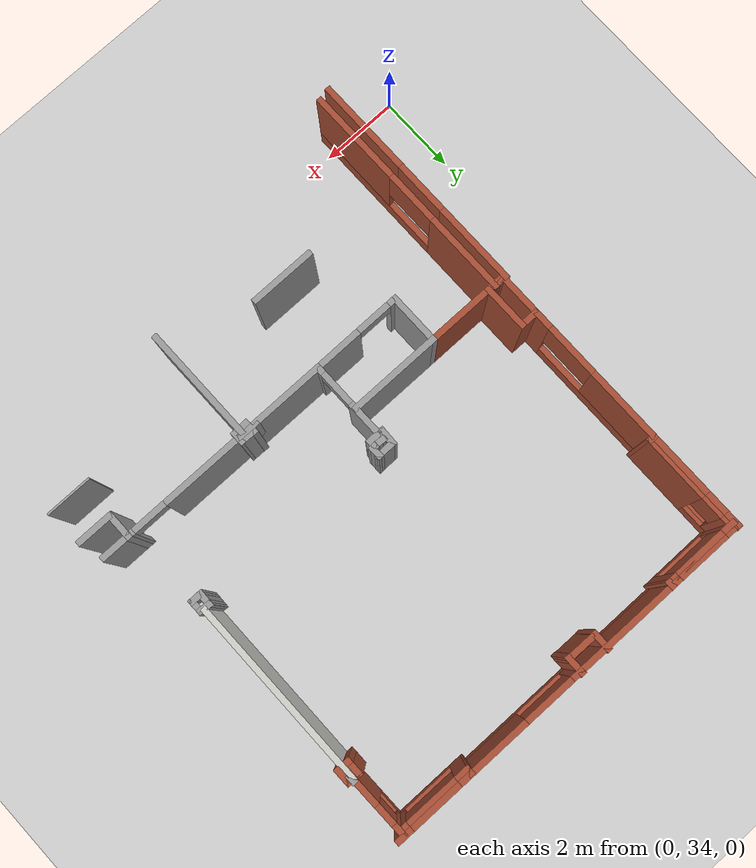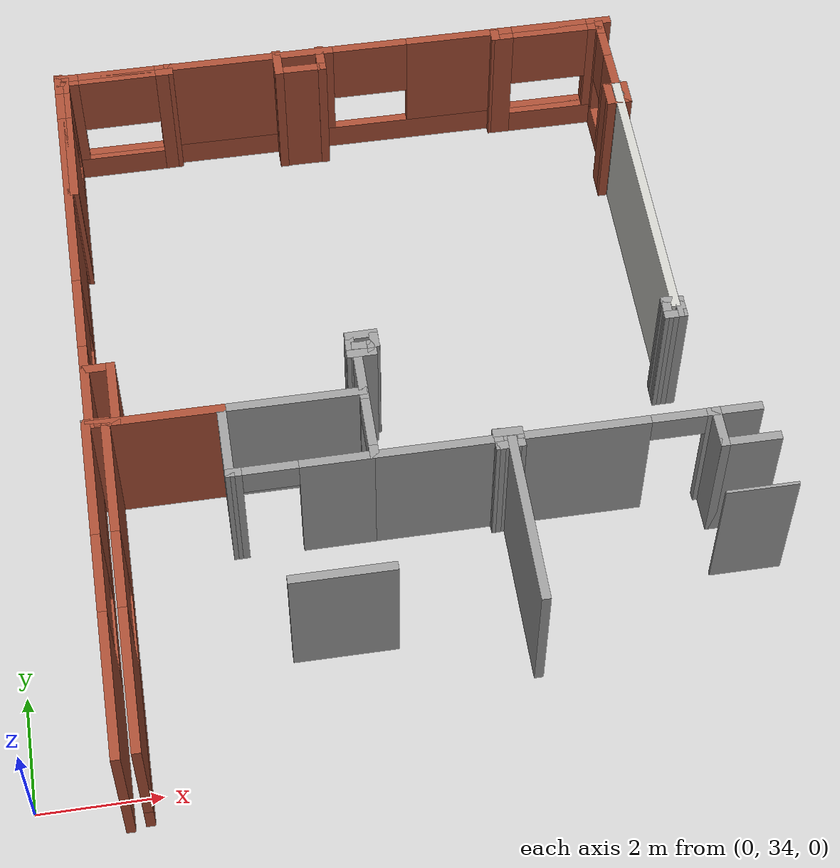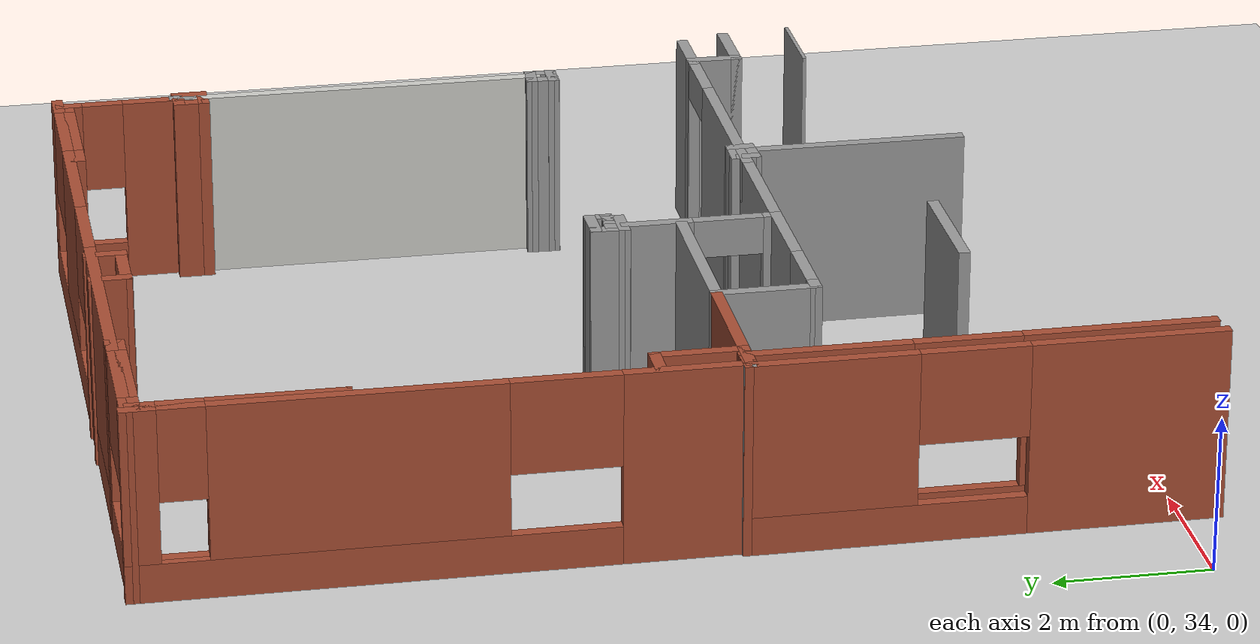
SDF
<sdf version="1.6">
 <world name="default">
  <model name="ground_plane">
   <static>1</static>
   <link name="link">
    <collision name="collision">
     <geometry><plane><normal>0 0 1</normal><size>100 100</size></plane></geometry>
     <surface><friction><ode><mu>100</mu><mu2>50</mu2></ode></friction></surface>
    </collision>
    <visual name="visual">
     <cast_shadows>0</cast_shadows>
     <geometry><plane><normal>0 0 1</normal><size>100 100</size></plane></geometry>
     <material>
      <script><uri>file://media/materials/scripts/gazebo.material</uri><name>Gazebo/Grey</name></script>
     </material>
    </visual>
   </link>
  </model>
  <model name="CVSSP">
   <pose>23.8714 24.094 0 0 -0 0</pose>
   <link name="Wall_302">
    <collision name="Wall_302_Collision">
     <geometry><box><size>0.356824 0.15 2.5</size></box></geometry>
     <pose>0 0 1.25 0 -0 0</pose>
    </collision>
    <visual name="Wall_302_Visual">
     <pose>0 0 1.25 0 -0 0</pose>
     <geometry><box><size>0.356824 0.15 2.5</size></box></geometry>
     <material>
      <script><uri>file://media/materials/scripts/gazebo.material</uri><name>Gazebo/Grey</name></script>
      <ambient>1 1 1 1</ambient>
     </material>
    </visual>
    <pose>-12.6319 21.0442 0 0 0 -1.55451</pose>
   </link>
   <link name="Wall_309">
    <collision name="Wall_309_Collision">
     <geometry><box><size>4.97737 0.15 2.5</size></box></geometry>
     <pose>0 0 1.25 0 -0 0</pose>
    </collision>
    <visual name="Wall_309_Visual">
     <pose>0 0 1.25 0 -0 0</pose>
     <geometry><box><size>4.97737 0.15 2.5</size></box></geometry>
     <material>
      <script><uri>file://media/materials/scripts/gazebo.material</uri><name>Gazebo/CeilingTiled</name></script>
      <ambient>0.588235 0.588235 0.588235 1</ambient>
     </material>
    </visual>
    <pose>-12.6619 18.6826 0 0 -0 1.56838</pose>
   </link>
   <link name="Wall_353">
    <pose>-19.1292 14.0509 0 0 0 -3.13801</pose>
    <visual name="Wall_353_Visual_0">
     <pose>-0.582227 0 1.25 0 -0 0</pose>
     <geometry><box><size>1.27864 0.15 2.5</size></box></geometry>
     <material>
      <script><uri>file://media/materials/scripts/gazebo.material</uri><name>Gazebo/Grey</name></script>
      <ambient>1 1 1 1</ambient>
     </material>
    </visual>
    <collision name="Wall_353_Collision_0">
     <geometry><box><size>1.27864 0.15 2.5</size></box></geometry>
     <pose>-0.582227 0 1.25 0 -0 0</pose>
    </collision>
    <visual name="Wall_353_Visual_1">
     <pose>1.08932 0 1.25 0 -0 0</pose>
     <geometry><box><size>0.264455 0.15 2.5</size></box></geometry>
     <material>
      <script><uri>file://media/materials/scripts/gazebo.material</uri><name>Gazebo/Grey</name></script>
      <ambient>1 1 1 1</ambient>
     </material>
    </visual>
    <collision name="Wall_353_Collision_1">
     <geometry><box><size>0.264455 0.15 2.5</size></box></geometry>
     <pose>1.08932 0 1.25 0 -0 0</pose>
    </collision>
    <visual name="Wall_353_Visual_2">
     <pose>0.507091 0 2.25 0 -0 0</pose>
     <geometry><box><size>0.9 0.15 0.5</size></box></geometry>
     <material>
      <script><uri>file://media/materials/scripts/gazebo.material</uri><name>Gazebo/Grey</name></script>
      <ambient>1 1 1 1</ambient>
     </material>
    </visual>
    <collision name="Wall_353_Collision_2">
     <geometry><box><size>0.9 0.15 0.5</size></box></geometry>
     <pose>0.507091 0 2.25 0 -0 0</pose>
    </collision>
   </link>
   <link name="Wall_354">
    <collision name="Wall_354_Collision">
     <geometry><box><size>1.39179 0.15 2.5</size></box></geometry>
     <pose>0 0 1.25 0 -0 0</pose>
    </collision>
    <visual name="Wall_354_Visual">
     <pose>0 0 1.25 0 -0 0</pose>
     <geometry><box><size>1.39179 0.15 2.5</size></box></geometry>
     <material>
      <script><uri>file://media/materials/scripts/gazebo.material</uri><name>Gazebo/Grey</name></script>
      <ambient>0.588235 0.588235 0.588235 1</ambient>
     </material>
    </visual>
    <pose>-20.2758 14.6677 0 0 -0 1.5708</pose>
   </link>
   <link name="Wall_355">
    <collision name="Wall_355_Collision">
     <geometry><box><size>2.42378 0.15 2.5</size></box></geometry>
     <pose>0 0 1.25 0 -0 0</pose>
    </collision>
    <visual name="Wall_355_Visual">
     <pose>0 0 1.25 0 -0 0</pose>
     <geometry><box><size>2.42378 0.15 2.5</size></box></geometry>
     <material>
      <script><uri>file://media/materials/scripts/gazebo.material</uri><name>Gazebo/Grey</name></script>
      <ambient>0.588235 0.588235 0.588235 1</ambient>
     </material>
    </visual>
    <pose>-19.1389 15.2885 0 0 -0 0</pose>
   </link>
   <link name="Wall_357">
    <collision name="Wall_357_Collision">
     <geometry><box><size>2.25 0.15 2.5</size></box></geometry>
     <pose>0 0 1.25 0 -0 0</pose>
    </collision>
    <visual name="Wall_357_Visual">
     <pose>0 0 1.25 0 -0 0</pose>
     <geometry><box><size>2.25 0.15 2.5</size></box></geometry>
     <material>
      <script><uri>file://media/materials/scripts/gazebo.material</uri><name>Gazebo/Bricks</name></script>
      <ambient>1 1 1 1</ambient>
     </material>
    </visual>
    <pose>-21.3258 15.2885 0 0 -0 3.14159</pose>
   </link>
   <link name="Wall_358">
    <pose>-22.3758 19.0214 0 0 -0 1.5708</pose>
    <visual name="Wall_358_Visual_0">
     <pose>-2.99416 0 1.25 0 -0 0</pose>
     <geometry><box><size>1.62732 0.15 2.5</size></box></geometry>
     <material>
      <script><uri>file://media/materials/scripts/gazebo.material</uri><name>Gazebo/Bricks</name></script>
      <ambient>1 1 1 1</ambient>
     </material>
    </visual>
    <collision name="Wall_358_Collision_0">
     <geometry><box><size>1.62732 0.15 2.5</size></box></geometry>
     <pose>-2.99416 0 1.25 0 -0 0</pose>
    </collision>
    <visual name="Wall_358_Visual_1">
     <pose>0.813662 0 0.25 0 -0 0</pose>
     <geometry><box><size>5.98833 0.15 0.5</size></box></geometry>
     <material>
      <script><uri>file://media/materials/scripts/gazebo.material</uri><name>Gazebo/Bricks</name></script>
      <ambient>1 1 1 1</ambient>
     </material>
    </visual>
    <collision name="Wall_358_Collision_1">
     <geometry><box><size>5.98833 0.15 0.5</size></box></geometry>
     <pose>0.813662 0 0.25 0 -0 0</pose>
    </collision>
    <visual name="Wall_358_Visual_2">
     <pose>0.981652 0 1.5 0 -0 0</pose>
     <geometry><box><size>3.60157 0.15 2</size></box></geometry>
     <material>
      <script><uri>file://media/materials/scripts/gazebo.material</uri><name>Gazebo/Bricks</name></script>
      <ambient>1 1 1 1</ambient>
     </material>
    </visual>
    <collision name="Wall_358_Collision_2">
     <geometry><box><size>3.60157 0.15 2</size></box></geometry>
     <pose>0.981652 0 1.5 0 -0 0</pose>
    </collision>
    <visual name="Wall_358_Visual_3">
     <pose>3.58521 0 1.5 0 -0 0</pose>
     <geometry><box><size>0.445243 0.15 2</size></box></geometry>
     <material>
      <script><uri>file://media/materials/scripts/gazebo.material</uri><name>Gazebo/Bricks</name></script>
      <ambient>1 1 1 1</ambient>
     </material>
    </visual>
    <collision name="Wall_358_Collision_3">
     <geometry><box><size>0.445243 0.15 2</size></box></geometry>
     <pose>3.58521 0 1.5 0 -0 0</pose>
    </collision>
    <visual name="Wall_358_Visual_4">
     <pose>-1.49982 0 1.9 0 -0 0</pose>
     <geometry><box><size>1.36137 0.15 1.2</size></box></geometry>
     <material>
      <script><uri>file://media/materials/scripts/gazebo.material</uri><name>Gazebo/Bricks</name></script>
      <ambient>1 1 1 1</ambient>
     </material>
    </visual>
    <collision name="Wall_358_Collision_4">
     <geometry><box><size>1.36137 0.15 1.2</size></box></geometry>
     <pose>-1.49982 0 1.9 0 -0 0</pose>
    </collision>
    <visual name="Wall_358_Visual_5">
     <pose>3.07251 0 1.9 0 -0 0</pose>
     <geometry><box><size>0.580147 0.15 1.2</size></box></geometry>
     <material>
      <script><uri>file://media/materials/scripts/gazebo.material</uri><name>Gazebo/Bricks</name></script>
      <ambient>1 1 1 1</ambient>
     </material>
    </visual>
    <collision name="Wall_358_Collision_5">
     <geometry><box><size>0.580147 0.15 1.2</size></box></geometry>
     <pose>3.07251 0 1.9 0 -0 0</pose>
    </collision>
   </link>
   <link name="Wall_359">
    <pose>-17.445 22.7195 0 0 0 -0.002346</pose>
    <visual name="Wall_359_Visual_0">
     <pose>-4.79661 0 1.25 0 -0 0</pose>
     <geometry><box><size>0.418451 0.15 2.5</size></box></geometry>
     <material>
      <script><uri>file://media/materials/scripts/gazebo.material</uri><name>Gazebo/Bricks</name></script>
      <ambient>1 1 1 1</ambient>
     </material>
    </visual>
    <collision name="Wall_359_Collision_0">
     <geometry><box><size>0.418451 0.15 2.5</size></box></geometry>
     <pose>-4.79661 0 1.25 0 -0 0</pose>
    </collision>
    <visual name="Wall_359_Visual_1">
     <pose>0.209225 0 0.25 0 -0 0</pose>
     <geometry><box><size>9.59323 0.15 0.5</size></box></geometry>
     <material>
      <script><uri>file://media/materials/scripts/gazebo.material</uri><name>Gazebo/Bricks</name></script>
      <ambient>1 1 1 1</ambient>
     </material>
    </visual>
    <collision name="Wall_359_Collision_1">
     <geometry><box><size>9.59323 0.15 0.5</size></box></geometry>
     <pose>0.209225 0 0.25 0 -0 0</pose>
    </collision>
    <visual name="Wall_359_Visual_2">
     <pose>-1.63846 0 1.5 0 -0 0</pose>
     <geometry><box><size>3.18757 0.15 2</size></box></geometry>
     <material>
      <script><uri>file://media/materials/scripts/gazebo.material</uri><name>Gazebo/Bricks</name></script>
      <ambient>1 1 1 1</ambient>
     </material>
    </visual>
    <collision name="Wall_359_Collision_2">
     <geometry><box><size>3.18757 0.15 2</size></box></geometry>
     <pose>-1.63846 0 1.5 0 -0 0</pose>
    </collision>
    <visual name="Wall_359_Visual_3">
     <pose>2.23874 0 1.5 0 -0 0</pose>
     <geometry><box><size>1.91586 0.15 2</size></box></geometry>
     <material>
      <script><uri>file://media/materials/scripts/gazebo.material</uri><name>Gazebo/Bricks</name></script>
      <ambient>1 1 1 1</ambient>
     </material>
    </visual>
    <collision name="Wall_359_Collision_3">
     <geometry><box><size>1.91586 0.15 2</size></box></geometry>
     <pose>2.23874 0 1.5 0 -0 0</pose>
    </collision>
    <visual name="Wall_359_Visual_4">
     <pose>4.78077 0 1.5 0 -0 0</pose>
     <geometry><box><size>0.450139 0.15 2</size></box></geometry>
     <material>
      <script><uri>file://media/materials/scripts/gazebo.material</uri><name>Gazebo/Bricks</name></script>
      <ambient>1 1 1 1</ambient>
     </material>
    </visual>
    <collision name="Wall_359_Collision_4">
     <geometry><box><size>0.450139 0.15 2</size></box></geometry>
     <pose>4.78077 0 1.5 0 -0 0</pose>
    </collision>
    <visual name="Wall_359_Visual_5">
     <pose>-3.90982 0 1.9 0 -0 0</pose>
     <geometry><box><size>1.35514 0.15 1.2</size></box></geometry>
     <material>
      <script><uri>file://media/materials/scripts/gazebo.material</uri><name>Gazebo/Bricks</name></script>
      <ambient>1 1 1 1</ambient>
     </material>
    </visual>
    <collision name="Wall_359_Collision_5">
     <geometry><box><size>1.35514 0.15 1.2</size></box></geometry>
     <pose>-3.90982 0 1.9 0 -0 0</pose>
    </collision>
    <visual name="Wall_359_Visual_6">
     <pose>0.618067 0 1.9 0 -0 0</pose>
     <geometry><box><size>1.32548 0.15 1.2</size></box></geometry>
     <material>
      <script><uri>file://media/materials/scripts/gazebo.material</uri><name>Gazebo/Bricks</name></script>
      <ambient>1 1 1 1</ambient>
     </material>
    </visual>
    <collision name="Wall_359_Collision_6">
     <geometry><box><size>1.32548 0.15 1.2</size></box></geometry>
     <pose>0.618067 0 1.9 0 -0 0</pose>
    </collision>
    <visual name="Wall_359_Visual_7">
     <pose>3.87618 0 1.9 0 -0 0</pose>
     <geometry><box><size>1.35903 0.15 1.2</size></box></geometry>
     <material>
      <script><uri>file://media/materials/scripts/gazebo.material</uri><name>Gazebo/Bricks</name></script>
      <ambient>1 1 1 1</ambient>
     </material>
    </visual>
    <collision name="Wall_359_Collision_7">
     <geometry><box><size>1.35903 0.15 1.2</size></box></geometry>
     <pose>3.87618 0 1.9 0 -0 0</pose>
    </collision>
   </link>
   <link name="Wall_364">
    <pose>-12.6622 21.8833 0 0 -0 1.57855</pose>
    <visual name="Wall_364_Visual_0">
     <pose>-0.444878 0 1.25 0 -0 0</pose>
     <geometry><box><size>0.834848 0.15 2.5</size></box></geometry>
     <material>
      <script><uri>file://media/materials/scripts/gazebo.material</uri><name>Gazebo/Bricks</name></script>
      <ambient>1 1 1 1</ambient>
     </material>
    </visual>
    <collision name="Wall_364_Collision_0">
     <geometry><box><size>0.834848 0.15 2.5</size></box></geometry>
     <pose>-0.444878 0 1.25 0 -0 0</pose>
    </collision>
    <visual name="Wall_364_Visual_1">
     <pose>0.417424 0 0.25 0 -0 0</pose>
     <geometry><box><size>0.889756 0.15 0.5</size></box></geometry>
     <material>
      <script><uri>file://media/materials/scripts/gazebo.material</uri><name>Gazebo/Bricks</name></script>
      <ambient>1 1 1 1</ambient>
     </material>
    </visual>
    <collision name="Wall_364_Collision_1">
     <geometry><box><size>0.889756 0.15 0.5</size></box></geometry>
     <pose>0.417424 0 0.25 0 -0 0</pose>
    </collision>
    <visual name="Wall_364_Visual_2">
     <pose>0.687151 0 1.5 0 -0 0</pose>
     <geometry><box><size>0.350302 0.15 2</size></box></geometry>
     <material>
      <script><uri>file://media/materials/scripts/gazebo.material</uri><name>Gazebo/Bricks</name></script>
      <ambient>1 1 1 1</ambient>
     </material>
    </visual>
    <collision name="Wall_364_Collision_2">
     <geometry><box><size>0.350302 0.15 2</size></box></geometry>
     <pose>0.687151 0 1.5 0 -0 0</pose>
    </collision>
    <visual name="Wall_364_Visual_3">
     <pose>0.242273 0 1.9 0 -0 0</pose>
     <geometry><box><size>0.539454 0.15 1.2</size></box></geometry>
     <material>
      <script><uri>file://media/materials/scripts/gazebo.material</uri><name>Gazebo/Bricks</name></script>
      <ambient>1 1 1 1</ambient>
     </material>
    </visual>
    <collision name="Wall_364_Collision_3">
     <geometry><box><size>0.539454 0.15 1.2</size></box></geometry>
     <pose>0.242273 0 1.9 0 -0 0</pose>
    </collision>
   </link>
   <link name="Wall_366">
    <collision name="Wall_366_Collision">
     <geometry><box><size>0.25 0.15 2.5</size></box></geometry>
     <pose>0 0 1.25 0 -0 0</pose>
    </collision>
    <visual name="Wall_366_Visual">
     <pose>0 0 1.25 0 -0 0</pose>
     <geometry><box><size>0.25 0.15 2.5</size></box></geometry>
     <material>
      <script><uri>file://media/materials/scripts/gazebo.material</uri><name>Gazebo/Bricks</name></script>
      <ambient>1 1 1 1</ambient>
     </material>
    </visual>
    <pose>-14.5641 22.637 0 0 0 -1.5708</pose>
   </link>
   <link name="Wall_367">
    <pose>-13.6341 22.584 0 0 0 -0.00315</pose>
    <visual name="Wall_367_Visual_0">
     <pose>-0.809801 0 1.25 0 -0 0</pose>
     <geometry><box><size>0.390731 0.15 2.5</size></box></geometry>
     <material>
      <script><uri>file://media/materials/scripts/gazebo.material</uri><name>Gazebo/Bricks</name></script>
      <ambient>1 1 1 1</ambient>
     </material>
    </visual>
    <collision name="Wall_367_Collision_0">
     <geometry><box><size>0.390731 0.15 2.5</size></box></geometry>
     <pose>-0.809801 0 1.25 0 -0 0</pose>
    </collision>
    <visual name="Wall_367_Visual_1">
     <pose>0.195366 0 0.25 0 -0 0</pose>
     <geometry><box><size>1.6196 0.15 0.5</size></box></geometry>
     <material>
      <script><uri>file://media/materials/scripts/gazebo.material</uri><name>Gazebo/Bricks</name></script>
      <ambient>1 1 1 1</ambient>
     </material>
    </visual>
    <collision name="Wall_367_Collision_1">
     <geometry><box><size>1.6196 0.15 0.5</size></box></geometry>
     <pose>0.195366 0 0.25 0 -0 0</pose>
    </collision>
    <visual name="Wall_367_Visual_2">
     <pose>0.874844 0 1.5 0 -0 0</pose>
     <geometry><box><size>0.260644 0.15 2</size></box></geometry>
     <material>
      <script><uri>file://media/materials/scripts/gazebo.material</uri><name>Gazebo/Bricks</name></script>
      <ambient>1 1 1 1</ambient>
     </material>
    </visual>
    <collision name="Wall_367_Collision_2">
     <geometry><box><size>0.260644 0.15 2</size></box></geometry>
     <pose>0.874844 0 1.5 0 -0 0</pose>
    </collision>
    <visual name="Wall_367_Visual_3">
     <pose>0.065044 0 1.9 0 -0 0</pose>
     <geometry><box><size>1.35896 0.15 1.2</size></box></geometry>
     <material>
      <script><uri>file://media/materials/scripts/gazebo.material</uri><name>Gazebo/Bricks</name></script>
      <ambient>1 1 1 1</ambient>
     </material>
    </visual>
    <collision name="Wall_367_Collision_3">
     <geometry><box><size>1.35896 0.15 1.2</size></box></geometry>
     <pose>0.065044 0 1.9 0 -0 0</pose>
    </collision>
   </link>
   <link name="Wall_369">
    <collision name="Wall_369_Collision">
     <geometry><box><size>0.55293 0.15 2.5</size></box></geometry>
     <pose>0 0 1.25 0 -0 0</pose>
    </collision>
    <visual name="Wall_369_Visual">
     <pose>0 0 1.25 0 -0 0</pose>
     <geometry><box><size>0.55293 0.15 2.5</size></box></geometry>
     <material>
      <script><uri>file://media/materials/scripts/gazebo.material</uri><name>Gazebo/Bricks</name></script>
      <ambient>1 1 1 1</ambient>
     </material>
    </visual>
    <pose>-18.4961 22.5535 0 0 0 -1.5708</pose>
   </link>
   <link name="Wall_370">
    <collision name="Wall_370_Collision">
     <geometry><box><size>0.913815 0.15 2.5</size></box></geometry>
     <pose>0 0 1.25 0 -0 0</pose>
    </collision>
    <visual name="Wall_370_Visual">
     <pose>0 0 1.25 0 -0 0</pose>
     <geometry><box><size>0.913815 0.15 2.5</size></box></geometry>
     <material>
      <script><uri>file://media/materials/scripts/gazebo.material</uri><name>Gazebo/Bricks</name></script>
      <ambient>1 1 1 1</ambient>
     </material>
    </visual>
    <pose>-18.1142 22.3569 0 0 0 -0.007054</pose>
   </link>
   <link name="Wall_371">
    <collision name="Wall_371_Collision">
     <geometry><box><size>0.55293 0.15 2.5</size></box></geometry>
     <pose>0 0 1.25 0 -0 0</pose>
    </collision>
    <visual name="Wall_371_Visual">
     <pose>0 0 1.25 0 -0 0</pose>
     <geometry><box><size>0.55293 0.15 2.5</size></box></geometry>
     <material>
      <script><uri>file://media/materials/scripts/gazebo.material</uri><name>Gazebo/Bricks</name></script>
      <ambient>1 1 1 1</ambient>
     </material>
    </visual>
    <pose>-17.7324 22.5482 0 0 -0 1.5708</pose>
   </link>
   <link name="Wall_374">
    <collision name="Wall_374_Collision">
     <geometry><box><size>0.25 0.15 2.5</size></box></geometry>
     <pose>0 0 1.25 0 -0 0</pose>
    </collision>
    <visual name="Wall_374_Visual">
     <pose>0 0 1.25 0 -0 0</pose>
     <geometry><box><size>0.25 0.15 2.5</size></box></geometry>
     <material>
      <script><uri>file://media/materials/scripts/gazebo.material</uri><name>Gazebo/Bricks</name></script>
      <ambient>1 1 1 1</ambient>
     </material>
    </visual>
    <pose>-20.4318 22.6823 0 0 0 -1.5708</pose>
   </link>
   <link name="Wall_375">
    <pose>-21.3845 22.6294 0 0 0 -3.13852</pose>
    <visual name="Wall_375_Visual_0">
     <pose>-0.871492 0 1.25 0 -0 0</pose>
     <geometry><box><size>0.312508 0.15 2.5</size></box></geometry>
     <material>
      <script><uri>file://media/materials/scripts/gazebo.material</uri><name>Gazebo/Bricks</name></script>
      <ambient>1 1 1 1</ambient>
     </material>
    </visual>
    <collision name="Wall_375_Collision_0">
     <geometry><box><size>0.312508 0.15 2.5</size></box></geometry>
     <pose>-0.871492 0 1.25 0 -0 0</pose>
    </collision>
    <visual name="Wall_375_Visual_1">
     <pose>0.156254 0 0.25 0 -0 0</pose>
     <geometry><box><size>1.74298 0.15 0.5</size></box></geometry>
     <material>
      <script><uri>file://media/materials/scripts/gazebo.material</uri><name>Gazebo/Bricks</name></script>
      <ambient>1 1 1 1</ambient>
     </material>
    </visual>
    <collision name="Wall_375_Collision_1">
     <geometry><box><size>1.74298 0.15 0.5</size></box></geometry>
     <pose>0.156254 0 0.25 0 -0 0</pose>
    </collision>
    <visual name="Wall_375_Visual_2">
     <pose>0.835704 0 1.5 0 -0 0</pose>
     <geometry><box><size>0.384083 0.15 2</size></box></geometry>
     <material>
      <script><uri>file://media/materials/scripts/gazebo.material</uri><name>Gazebo/Bricks</name></script>
      <ambient>1 1 1 1</ambient>
     </material>
    </visual>
    <collision name="Wall_375_Collision_2">
     <geometry><box><size>0.384083 0.15 2</size></box></geometry>
     <pose>0.835704 0 1.5 0 -0 0</pose>
    </collision>
    <visual name="Wall_375_Visual_3">
     <pose>-0.035788 0 1.9 0 -0 0</pose>
     <geometry><box><size>1.3589 0.15 1.2</size></box></geometry>
     <material>
      <script><uri>file://media/materials/scripts/gazebo.material</uri><name>Gazebo/Bricks</name></script>
      <ambient>1 1 1 1</ambient>
     </material>
    </visual>
    <collision name="Wall_375_Collision_3">
     <geometry><box><size>1.3589 0.15 1.2</size></box></geometry>
     <pose>-0.035788 0 1.9 0 -0 0</pose>
    </collision>
   </link>
   <link name="Wall_377">
    <collision name="Wall_377_Collision">
     <geometry><box><size>0.25 0.15 2.5</size></box></geometry>
     <pose>0 0 1.25 0 -0 0</pose>
    </collision>
    <visual name="Wall_377_Visual">
     <pose>0 0 1.25 0 -0 0</pose>
     <geometry><box><size>0.25 0.15 2.5</size></box></geometry>
     <material>
      <script><uri>file://media/materials/scripts/gazebo.material</uri><name>Gazebo/Bricks</name></script>
      <ambient>1 1 1 1</ambient>
     </material>
    </visual>
    <pose>-22.3251 20.1236 0 0 -0 0</pose>
   </link>
   <link name="Wall_378">
    <pose>-22.2722 21.3977 0 0 -0 1.5685</pose>
    <visual name="Wall_378_Visual_0">
     <pose>-0.473393 0 1.25 0 -0 0</pose>
     <geometry><box><size>1.75143 0.15 2.5</size></box></geometry>
     <material>
      <script><uri>file://media/materials/scripts/gazebo.material</uri><name>Gazebo/Bricks</name></script>
      <ambient>1 1 1 1</ambient>
     </material>
    </visual>
    <collision name="Wall_378_Collision_0">
     <geometry><box><size>1.75143 0.15 2.5</size></box></geometry>
     <pose>-0.473393 0 1.25 0 -0 0</pose>
    </collision>
    <visual name="Wall_378_Visual_1">
     <pose>0.875712 0 0.25 0 -0 0</pose>
     <geometry><box><size>0.946786 0.15 0.5</size></box></geometry>
     <material>
      <script><uri>file://media/materials/scripts/gazebo.material</uri><name>Gazebo/Bricks</name></script>
      <ambient>1 1 1 1</ambient>
     </material>
    </visual>
    <collision name="Wall_378_Collision_1">
     <geometry><box><size>0.946786 0.15 0.5</size></box></geometry>
     <pose>0.875712 0 0.25 0 -0 0</pose>
    </collision>
    <visual name="Wall_378_Visual_2">
     <pose>1.16768 0 1.5 0 -0 0</pose>
     <geometry><box><size>0.362852 0.15 2</size></box></geometry>
     <material>
      <script><uri>file://media/materials/scripts/gazebo.material</uri><name>Gazebo/Bricks</name></script>
      <ambient>1 1 1 1</ambient>
     </material>
    </visual>
    <collision name="Wall_378_Collision_2">
     <geometry><box><size>0.362852 0.15 2</size></box></geometry>
     <pose>1.16768 0 1.5 0 -0 0</pose>
    </collision>
    <visual name="Wall_378_Visual_3">
     <pose>0.694286 0 1.9 0 -0 0</pose>
     <geometry><box><size>0.583934 0.15 1.2</size></box></geometry>
     <material>
      <script><uri>file://media/materials/scripts/gazebo.material</uri><name>Gazebo/Bricks</name></script>
      <ambient>1 1 1 1</ambient>
     </material>
    </visual>
    <collision name="Wall_378_Collision_3">
     <geometry><box><size>0.583934 0.15 1.2</size></box></geometry>
     <pose>0.694286 0 1.9 0 -0 0</pose>
    </collision>
   </link>
   <link name="Wall_380">
    <collision name="Wall_380_Collision">
     <geometry><box><size>0.550756 0.15 2.5</size></box></geometry>
     <pose>0 0 1.25 0 -0 0</pose>
    </collision>
    <visual name="Wall_380_Visual">
     <pose>0 0 1.25 0 -0 0</pose>
     <geometry><box><size>0.550756 0.15 2.5</size></box></geometry>
     <material>
      <script><uri>file://media/materials/scripts/gazebo.material</uri><name>Gazebo/Bricks</name></script>
      <ambient>1 1 1 1</ambient>
     </material>
    </visual>
    <pose>-22.152 16.3732 0 0 -0 0</pose>
   </link>
   <link name="Wall_381">
    <collision name="Wall_381_Collision">
     <geometry><box><size>1.23131 0.15 2.5</size></box></geometry>
     <pose>0 0 1.25 0 -0 0</pose>
    </collision>
    <visual name="Wall_381_Visual">
     <pose>0 0 1.25 0 -0 0</pose>
     <geometry><box><size>1.23131 0.15 2.5</size></box></geometry>
     <material>
      <script><uri>file://media/materials/scripts/gazebo.material</uri><name>Gazebo/Bricks</name></script>
      <ambient>1 1 1 1</ambient>
     </material>
    </visual>
    <pose>-21.9516 15.8325 0 0 0 -1.5708</pose>
   </link>
   <link name="Wall_391">
    <pose>-22.4329 12.3917 0 0 -0 1.5708</pose>
    <visual name="Wall_391_Visual_0">
     <pose>-1.76019 0 1.25 0 -0 0</pose>
     <geometry><box><size>2.47961 0.15 2.5</size></box></geometry>
     <material>
      <script><uri>file://media/materials/scripts/gazebo.material</uri><name>Gazebo/Bricks</name></script>
      <ambient>1 1 1 1</ambient>
     </material>
    </visual>
    <collision name="Wall_391_Collision_0">
     <geometry><box><size>2.47961 0.15 2.5</size></box></geometry>
     <pose>-1.76019 0 1.25 0 -0 0</pose>
    </collision>
    <visual name="Wall_391_Visual_1">
     <pose>1.2398 0 0.25 0 -0 0</pose>
     <geometry><box><size>3.52037 0.15 0.5</size></box></geometry>
     <material>
      <script><uri>file://media/materials/scripts/gazebo.material</uri><name>Gazebo/Bricks</name></script>
      <ambient>1 1 1 1</ambient>
     </material>
    </visual>
    <collision name="Wall_391_Collision_1">
     <geometry><box><size>3.52037 0.15 0.5</size></box></geometry>
     <pose>1.2398 0 0.25 0 -0 0</pose>
    </collision>
    <visual name="Wall_391_Visual_2">
     <pose>1.92424 0 1.5 0 -0 0</pose>
     <geometry><box><size>2.1515 0.15 2</size></box></geometry>
     <material>
      <script><uri>file://media/materials/scripts/gazebo.material</uri><name>Gazebo/Bricks</name></script>
      <ambient>1 1 1 1</ambient>
     </material>
    </visual>
    <collision name="Wall_391_Collision_2">
     <geometry><box><size>2.1515 0.15 2</size></box></geometry>
     <pose>1.92424 0 1.5 0 -0 0</pose>
    </collision>
    <visual name="Wall_391_Visual_3">
     <pose>0.164051 0 1.9 0 -0 0</pose>
     <geometry><box><size>1.36887 0.15 1.2</size></box></geometry>
     <material>
      <script><uri>file://media/materials/scripts/gazebo.material</uri><name>Gazebo/Bricks</name></script>
      <ambient>1 1 1 1</ambient>
     </material>
    </visual>
    <collision name="Wall_391_Collision_3">
     <geometry><box><size>1.36887 0.15 1.2</size></box></geometry>
     <pose>0.164051 0 1.9 0 -0 0</pose>
    </collision>
   </link>
   <link name="Wall_392">
    <collision name="Wall_392_Collision">
     <geometry><box><size>0.15 0.15 2.5</size></box></geometry>
     <pose>0 0 1.25 0 -0 0</pose>
    </collision>
    <visual name="Wall_392_Visual">
     <pose>0 0 1.25 0 -0 0</pose>
     <geometry><box><size>0.15 0.15 2.5</size></box></geometry>
     <material>
      <script><uri>file://media/materials/scripts/gazebo.material</uri><name>Gazebo/Grey</name></script>
      <ambient>1 1 1 1</ambient>
     </material>
    </visual>
    <pose>-22.4329 15.3167 0 0 -0 0</pose>
   </link>
   <link name="Wall_394">
    <collision name="Wall_394_Collision">
     <geometry><box><size>0.459201 0.15 2.5</size></box></geometry>
     <pose>0 0 1.25 0 -0 0</pose>
    </collision>
    <visual name="Wall_394_Visual">
     <pose>0 0 1.25 0 -0 0</pose>
     <geometry><box><size>0.459201 0.15 2.5</size></box></geometry>
     <material>
      <script><uri>file://media/materials/scripts/gazebo.material</uri><name>Gazebo/Bricks</name></script>
      <ambient>1 1 1 1</ambient>
     </material>
    </visual>
    <pose>-22.2785 15.3176 0 0 -0 0.005531</pose>
   </link>
   <link name="Wall_395">
    <pose>-22.124 12.4222 0 0 0 -1.5708</pose>
    <visual name="Wall_395_Visual_0">
     <pose>-1.90113 0 1.25 0 -0 0</pose>
     <geometry><box><size>2.1403 0.15 2.5</size></box></geometry>
     <material>
      <script><uri>file://media/materials/scripts/gazebo.material</uri><name>Gazebo/Bricks</name></script>
      <ambient>1 1 1 1</ambient>
     </material>
    </visual>
    <collision name="Wall_395_Collision_0">
     <geometry><box><size>2.1403 0.15 2.5</size></box></geometry>
     <pose>-1.90113 0 1.25 0 -0 0</pose>
    </collision>
    <visual name="Wall_395_Visual_1">
     <pose>1.07015 0 0.25 0 -0 0</pose>
     <geometry><box><size>3.80226 0.15 0.5</size></box></geometry>
     <material>
      <script><uri>file://media/materials/scripts/gazebo.material</uri><name>Gazebo/Bricks</name></script>
      <ambient>1 1 1 1</ambient>
     </material>
    </visual>
    <collision name="Wall_395_Collision_1">
     <geometry><box><size>3.80226 0.15 0.5</size></box></geometry>
     <pose>1.07015 0 0.25 0 -0 0</pose>
    </collision>
    <visual name="Wall_395_Visual_2">
     <pose>1.74597 0 1.5 0 -0 0</pose>
     <geometry><box><size>2.45063 0.15 2</size></box></geometry>
     <material>
      <script><uri>file://media/materials/scripts/gazebo.material</uri><name>Gazebo/Bricks</name></script>
      <ambient>1 1 1 1</ambient>
     </material>
    </visual>
    <collision name="Wall_395_Collision_2">
     <geometry><box><size>2.45063 0.15 2</size></box></geometry>
     <pose>1.74597 0 1.5 0 -0 0</pose>
    </collision>
    <visual name="Wall_395_Visual_3">
     <pose>-0.155166 0 1.9 0 -0 0</pose>
     <geometry><box><size>1.35163 0.15 1.2</size></box></geometry>
     <material>
      <script><uri>file://media/materials/scripts/gazebo.material</uri><name>Gazebo/Bricks</name></script>
      <ambient>1 1 1 1</ambient>
     </material>
    </visual>
    <collision name="Wall_395_Collision_3">
     <geometry><box><size>1.35163 0.15 1.2</size></box></geometry>
     <pose>-0.155166 0 1.9 0 -0 0</pose>
    </collision>
   </link>
   <link name="Wall_397">
    <collision name="Wall_397_Collision">
     <geometry><box><size>1.71055 0.15 2.5</size></box></geometry>
     <pose>0 0 1.25 0 -0 0</pose>
    </collision>
    <visual name="Wall_397_Visual">
     <pose>0 0 1.25 0 -0 0</pose>
     <geometry><box><size>1.71055 0.15 2.5</size></box></geometry>
     <material>
      <script><uri>file://media/materials/scripts/gazebo.material</uri><name>Gazebo/Grey</name></script>
      <ambient>1 1 1 1</ambient>
     </material>
    </visual>
    <pose>-18.7649 11.999 0 0 -0 3.14159</pose>
   </link>
   <link name="Wall_416">
    <collision name="Wall_416_Collision">
     <geometry><box><size>3 0.15 2.5</size></box></geometry>
     <pose>0 0 1.25 0 -0 0</pose>
    </collision>
    <visual name="Wall_416_Visual">
     <pose>0 0 1.25 0 -0 0</pose>
     <geometry><box><size>3 0.15 2.5</size></box></geometry>
     <material>
      <script><uri>file://media/materials/scripts/gazebo.material</uri><name>Gazebo/Grey</name></script>
      <ambient>0.588235 0.588235 0.588235 1</ambient>
     </material>
    </visual>
    <pose>-15.7939 12.5789 0 0 0 -1.5708</pose>
   </link>
   <link name="Wall_420">
    <collision name="Wall_420_Collision">
     <geometry><box><size>1.18498 0.05 2.5</size></box></geometry>
     <pose>0 0 1.25 0 -0 0</pose>
    </collision>
    <visual name="Wall_420_Visual">
     <pose>0 0 1.25 0 -0 0</pose>
     <geometry><box><size>1.18498 0.05 2.5</size></box></geometry>
     <material>
      <script><uri>file://media/materials/scripts/gazebo.material</uri><name>Gazebo/Grey</name></script>
      <ambient>1 1 1 1</ambient>
     </material>
    </visual>
    <pose>-12.0954 12.5375 0 0 -0 0.000414</pose>
   </link>
   <link name="Wall_422">
    <collision name="Wall_422_Collision">
     <geometry><box><size>0.75 0.15 2.5</size></box></geometry>
     <pose>0 0 1.25 0 -0 0</pose>
    </collision>
    <visual name="Wall_422_Visual">
     <pose>0 0 1.25 0 -0 0</pose>
     <geometry><box><size>0.75 0.15 2.5</size></box></geometry>
     <material>
      <script><uri>file://media/materials/scripts/gazebo.material</uri><name>Gazebo/Grey</name></script>
      <ambient>1 1 1 1</ambient>
     </material>
    </visual>
    <pose>-12.4883 13.7563 0 0 0 -1.5708</pose>
   </link>
   <link name="Wall_423">
    <collision name="Wall_423_Collision">
     <geometry><box><size>1 0.15 2.5</size></box></geometry>
     <pose>0 0 1.25 0 -0 0</pose>
    </collision>
    <visual name="Wall_423_Visual">
     <pose>0 0 1.25 0 -0 0</pose>
     <geometry><box><size>1 0.15 2.5</size></box></geometry>
     <material>
      <script><uri>file://media/materials/scripts/gazebo.material</uri><name>Gazebo/Grey</name></script>
      <ambient>1 1 1 1</ambient>
     </material>
    </visual>
    <pose>-12.0633 13.4563 0 0 -0 0</pose>
   </link>
   <link name="Wall_637">
    <collision name="Wall_637_Collision">
     <geometry><box><size>0.491084 0.15 2.5</size></box></geometry>
     <pose>0 0 1.25 0 -0 0</pose>
    </collision>
    <visual name="Wall_637_Visual">
     <pose>0 0 1.25 0 -0 0</pose>
     <geometry><box><size>0.491084 0.15 2.5</size></box></geometry>
     <material>
      <script><uri>file://media/materials/scripts/gazebo.material</uri><name>Gazebo/Grey</name></script>
      <ambient>1 1 1 1</ambient>
     </material>
    </visual>
    <pose>-15.8415 14.1619 0 0 0 -0.01282</pose>
   </link>
   <link name="Wall_638">
    <collision name="Wall_638_Collision">
     <geometry><box><size>0.377413 0.15 2.5</size></box></geometry>
     <pose>0 0 1.25 0 -0 0</pose>
    </collision>
    <visual name="Wall_638_Visual">
     <pose>0 0 1.25 0 -0 0</pose>
     <geometry><box><size>0.377413 0.15 2.5</size></box></geometry>
     <material>
      <script><uri>file://media/materials/scripts/gazebo.material</uri><name>Gazebo/Grey</name></script>
      <ambient>1 1 1 1</ambient>
     </material>
    </visual>
    <pose>-15.6688 14.046 0 0 0 -1.55157</pose>
   </link>
   <link name="Wall_639">
    <collision name="Wall_639_Collision">
     <geometry><box><size>0.48257 0.15 2.5</size></box></geometry>
     <pose>0 0 1.25 0 -0 0</pose>
    </collision>
    <visual name="Wall_639_Visual">
     <pose>0 0 1.25 0 -0 0</pose>
     <geometry><box><size>0.48257 0.15 2.5</size></box></geometry>
     <material>
      <script><uri>file://media/materials/scripts/gazebo.material</uri><name>Gazebo/Grey</name></script>
      <ambient>1 1 1 1</ambient>
     </material>
    </visual>
    <pose>-15.8327 13.9258 0 0 0 -3.10214</pose>
   </link>
   <link name="Wall_640">
    <collision name="Wall_640_Collision">
     <geometry><box><size>0.399387 0.15 2.5</size></box></geometry>
     <pose>0 0 1.25 0 -0 0</pose>
    </collision>
    <visual name="Wall_640_Visual">
     <pose>0 0 1.25 0 -0 0</pose>
     <geometry><box><size>0.399387 0.15 2.5</size></box></geometry>
     <material>
      <script><uri>file://media/materials/scripts/gazebo.material</uri><name>Gazebo/Grey</name></script>
      <ambient>1 1 1 1</ambient>
     </material>
    </visual>
    <pose>-16.0032 14.0438 0 0 -0 1.60587</pose>
   </link>
   <link name="Wall_643">
    <collision name="Wall_643_Collision">
     <geometry><box><size>0.542409 0.15 2.5</size></box></geometry>
     <pose>0 0 1.25 0 -0 0</pose>
    </collision>
    <visual name="Wall_643_Visual">
     <pose>0 0 1.25 0 -0 0</pose>
     <geometry><box><size>0.542409 0.15 2.5</size></box></geometry>
     <material>
      <script><uri>file://media/materials/scripts/gazebo.material</uri><name>Gazebo/Grey</name></script>
      <ambient>1 1 1 1</ambient>
     </material>
    </visual>
    <pose>-17.8681 16.3987 0 0 -0 0.016948</pose>
   </link>
   <link name="Wall_644">
    <collision name="Wall_644_Collision">
     <geometry><box><size>0.362905 0.15 2.5</size></box></geometry>
     <pose>0 0 1.25 0 -0 0</pose>
    </collision>
    <visual name="Wall_644_Visual">
     <pose>0 0 1.25 0 -0 0</pose>
     <geometry><box><size>0.362905 0.15 2.5</size></box></geometry>
     <material>
      <script><uri>file://media/materials/scripts/gazebo.material</uri><name>Gazebo/Grey</name></script>
      <ambient>1 1 1 1</ambient>
     </material>
    </visual>
    <pose>-17.6719 16.2956 0 0 0 -1.5708</pose>
   </link>
   <link name="Wall_645">
    <collision name="Wall_645_Collision">
     <geometry><box><size>0.210219 0.15 2.5</size></box></geometry>
     <pose>0 0 1.25 0 -0 0</pose>
    </collision>
    <visual name="Wall_645_Visual">
     <pose>0 0 1.25 0 -0 0</pose>
     <geometry><box><size>0.210219 0.15 2.5</size></box></geometry>
     <material>
      <script><uri>file://media/materials/scripts/gazebo.material</uri><name>Gazebo/Grey</name></script>
      <ambient>1 1 1 1</ambient>
     </material>
    </visual>
    <pose>-17.7019 16.1859 0 0 0 -3.03093</pose>
   </link>
   <link name="Wall_646">
    <collision name="Wall_646_Collision">
     <geometry><box><size>0.296301 0.15 2.5</size></box></geometry>
     <pose>0 0 1.25 0 -0 0</pose>
    </collision>
    <visual name="Wall_646_Visual">
     <pose>0 0 1.25 0 -0 0</pose>
     <geometry><box><size>0.296301 0.15 2.5</size></box></geometry>
     <material>
      <script><uri>file://media/materials/scripts/gazebo.material</uri><name>Gazebo/Grey</name></script>
      <ambient>1 1 1 1</ambient>
     </material>
    </visual>
    <pose>-17.7318 16.1161 0 0 0 -1.5708</pose>
   </link>
   <link name="Wall_647">
    <collision name="Wall_647_Collision">
     <geometry><box><size>0.5 0.15 2.5</size></box></geometry>
     <pose>0 0 1.25 0 -0 0</pose>
    </collision>
    <visual name="Wall_647_Visual">
     <pose>0 0 1.25 0 -0 0</pose>
     <geometry><box><size>0.5 0.15 2.5</size></box></geometry>
     <material>
      <script><uri>file://media/materials/scripts/gazebo.material</uri><name>Gazebo/Grey</name></script>
      <ambient>1 1 1 1</ambient>
     </material>
    </visual>
    <pose>-17.9068 16.0363 0 0 -0 3.14159</pose>
   </link>
   <link name="Wall_648">
    <collision name="Wall_648_Collision">
     <geometry><box><size>0.509266 0.15 2.5</size></box></geometry>
     <pose>0 0 1.25 0 -0 0</pose>
    </collision>
    <visual name="Wall_648_Visual">
     <pose>0 0 1.25 0 -0 0</pose>
     <geometry><box><size>0.509266 0.15 2.5</size></box></geometry>
     <material>
      <script><uri>file://media/materials/scripts/gazebo.material</uri><name>Gazebo/Grey</name></script>
      <ambient>1 1 1 1</ambient>
     </material>
    </visual>
    <pose>-18.0764 16.2158 0 0 -0 1.5406</pose>
   </link>
   <link name="Wall_650">
    <collision name="Wall_650_Collision">
     <geometry><box><size>0.380179 0.15 2.5</size></box></geometry>
     <pose>0 0 1.25 0 -0 0</pose>
    </collision>
    <visual name="Wall_650_Visual">
     <pose>0 0 1.25 0 -0 0</pose>
     <geometry><box><size>0.380179 0.15 2.5</size></box></geometry>
     <material>
      <script><uri>file://media/materials/scripts/gazebo.material</uri><name>Gazebo/Grey</name></script>
      <ambient>1 1 1 1</ambient>
     </material>
    </visual>
    <pose>-12.7047 16.3251 0 0 0 -0.076772</pose>
   </link>
   <link name="Wall_651">
    <collision name="Wall_651_Collision">
     <geometry><box><size>0.422777 0.15 2.5</size></box></geometry>
     <pose>0 0 1.25 0 -0 0</pose>
    </collision>
    <visual name="Wall_651_Visual">
     <pose>0 0 1.25 0 -0 0</pose>
     <geometry><box><size>0.422777 0.15 2.5</size></box></geometry>
     <material>
      <script><uri>file://media/materials/scripts/gazebo.material</uri><name>Gazebo/Grey</name></script>
      <ambient>1 1 1 1</ambient>
     </material>
    </visual>
    <pose>-12.5904 16.18 0 0 0 -1.5708</pose>
   </link>
   <link name="Wall_652">
    <collision name="Wall_652_Collision">
     <geometry><box><size>0.387619 0.15 2.5</size></box></geometry>
     <pose>0 0 1.25 0 -0 0</pose>
    </collision>
    <visual name="Wall_652_Visual">
     <pose>0 0 1.25 0 -0 0</pose>
     <geometry><box><size>0.387619 0.15 2.5</size></box></geometry>
     <material>
      <script><uri>file://media/materials/scripts/gazebo.material</uri><name>Gazebo/Grey</name></script>
      <ambient>1 1 1 1</ambient>
     </material>
    </visual>
    <pose>-12.7091 16.0437 0 0 -0 3.14159</pose>
   </link>
   <link name="Wall_653">
    <collision name="Wall_653_Collision">
     <geometry><box><size>0.440358 0.15 2.5</size></box></geometry>
     <pose>0 0 1.25 0 -0 0</pose>
    </collision>
    <visual name="Wall_653_Visual">
     <pose>0 0 1.25 0 -0 0</pose>
     <geometry><box><size>0.440358 0.15 2.5</size></box></geometry>
     <material>
      <script><uri>file://media/materials/scripts/gazebo.material</uri><name>Gazebo/Grey</name></script>
      <ambient>1 1 1 1</ambient>
     </material>
    </visual>
    <pose>-12.8234 16.1888 0 0 -0 1.5405</pose>
   </link>
   <link name="Wall_658">
    <collision name="Wall_658_Collision">
     <geometry><box><size>0.433881 0.15 2.5</size></box></geometry>
     <pose>0 0 1.25 0 -0 0</pose>
    </collision>
    <visual name="Wall_658_Visual">
     <pose>0 0 1.25 0 -0 0</pose>
     <geometry><box><size>0.433881 0.15 2.5</size></box></geometry>
     <material>
      <script><uri>file://media/materials/scripts/gazebo.material</uri><name>Gazebo/Bricks</name></script>
      <ambient>1 1 1 1</ambient>
     </material>
    </visual>
    <pose>-12.6759 20.7798 0 0 -0 3.14159</pose>
   </link>
   <link name="Wall_659">
    <collision name="Wall_659_Collision">
     <geometry><box><size>0.479662 0.15 2.5</size></box></geometry>
     <pose>0 0 1.25 0 -0 0</pose>
    </collision>
    <visual name="Wall_659_Visual">
     <pose>0 0 1.25 0 -0 0</pose>
     <geometry><box><size>0.479662 0.15 2.5</size></box></geometry>
     <material>
      <script><uri>file://media/materials/scripts/gazebo.material</uri><name>Gazebo/Bricks</name></script>
      <ambient>1 1 1 1</ambient>
     </material>
    </visual>
    <pose>-12.8176 20.9446 0 0 -0 1.5708</pose>
   </link>
   <link name="Wall_660">
    <collision name="Wall_660_Collision">
     <geometry><box><size>0.43335 0.15 2.5</size></box></geometry>
     <pose>0 0 1.25 0 -0 0</pose>
    </collision>
    <visual name="Wall_660_Visual">
     <pose>0 0 1.25 0 -0 0</pose>
     <geometry><box><size>0.43335 0.15 2.5</size></box></geometry>
     <material>
      <script><uri>file://media/materials/scripts/gazebo.material</uri><name>Gazebo/Bricks</name></script>
      <ambient>1 1 1 1</ambient>
     </material>
    </visual>
    <pose>-12.6759 21.1094 0 0 -0 0</pose>
   </link>
   <link name="Wall_661">
    <collision name="Wall_661_Collision">
     <geometry><box><size>0.479611 0.15 2.5</size></box></geometry>
     <pose>0 0 1.25 0 -0 0</pose>
    </collision>
    <visual name="Wall_661_Visual">
     <pose>0 0 1.25 0 -0 0</pose>
     <geometry><box><size>0.479611 0.15 2.5</size></box></geometry>
     <material>
      <script><uri>file://media/materials/scripts/gazebo.material</uri><name>Gazebo/Bricks</name></script>
      <ambient>1 1 1 1</ambient>
     </material>
    </visual>
    <pose>-12.5342 20.9446 0 0 0 -1.5708</pose>
   </link>
   <link name="Wall_71">
    <collision name="Wall_71_Collision">
     <geometry><box><size>0.253869 0.15 2.5</size></box></geometry>
     <pose>0 0 1.25 0 -0 0</pose>
    </collision>
    <visual name="Wall_71_Visual">
     <pose>0 0 1.25 0 -0 0</pose>
     <geometry><box><size>0.253869 0.15 2.5</size></box></geometry>
     <material>
      <script><uri>file://media/materials/scripts/gazebo.material</uri><name>Gazebo/Grey</name></script>
      <ambient>1 1 1 1</ambient>
     </material>
    </visual>
    <pose>-17.931 16.1912 0 0 -0 3.06873</pose>
   </link>
   <link name="Wall_72">
    <pose>-17.9828 15.125 0 0 0 -1.57074</pose>
    <visual name="Wall_72_Visual_0">
     <pose>-0.575826 0 1.25 0 -0 0</pose>
     <geometry><box><size>1.13835 0.15 2.5</size></box></geometry>
     <material>
      <script><uri>file://media/materials/scripts/gazebo.material</uri><name>Gazebo/Grey</name></script>
      <ambient>0.588235 0.588235 0.588235 1</ambient>
     </material>
    </visual>
    <collision name="Wall_72_Collision_0">
     <geometry><box><size>1.13835 0.15 2.5</size></box></geometry>
     <pose>-0.575826 0 1.25 0 -0 0</pose>
    </collision>
    <visual name="Wall_72_Visual_1">
     <pose>1.01917 0 1.25 0 -0 0</pose>
     <geometry><box><size>0.251651 0.15 2.5</size></box></geometry>
     <material>
      <script><uri>file://media/materials/scripts/gazebo.material</uri><name>Gazebo/Grey</name></script>
      <ambient>0.588235 0.588235 0.588235 1</ambient>
     </material>
    </visual>
    <collision name="Wall_72_Collision_1">
     <geometry><box><size>0.251651 0.15 2.5</size></box></geometry>
     <pose>1.01917 0 1.25 0 -0 0</pose>
    </collision>
    <visual name="Wall_72_Visual_2">
     <pose>0.443349 0 2.25 0 -0 0</pose>
     <geometry><box><size>0.9 0.15 0.5</size></box></geometry>
     <material>
      <script><uri>file://media/materials/scripts/gazebo.material</uri><name>Gazebo/Grey</name></script>
      <ambient>0.588235 0.588235 0.588235 1</ambient>
     </material>
    </visual>
    <collision name="Wall_72_Collision_2">
     <geometry><box><size>0.9 0.15 0.5</size></box></geometry>
     <pose>0.443349 0 2.25 0 -0 0</pose>
    </collision>
   </link>
   <link name="Wall_73">
    <collision name="Wall_73_Collision">
     <geometry><box><size>1.97989 0.15 2.5</size></box></geometry>
     <pose>0 0 1.25 0 -0 0</pose>
    </collision>
    <visual name="Wall_73_Visual">
     <pose>0 0 1.25 0 -0 0</pose>
     <geometry><box><size>1.97989 0.15 2.5</size></box></geometry>
     <material>
      <script><uri>file://media/materials/scripts/gazebo.material</uri><name>Gazebo/Grey</name></script>
      <ambient>1 1 1 1</ambient>
     </material>
    </visual>
    <pose>-17.0678 14.055 0 0 -0 0</pose>
   </link>
   <link name="Wall_75">
    <pose>-13.9778 14.055 0 0 -0 0</pose>
    <visual name="Wall_75_Visual_0">
     <pose>-0.906372 0 1.25 0 -0 0</pose>
     <geometry><box><size>2.68726 0.15 2.5</size></box></geometry>
     <material>
      <script><uri>file://media/materials/scripts/gazebo.material</uri><name>Gazebo/Grey</name></script>
      <ambient>1 1 1 1</ambient>
     </material>
    </visual>
    <collision name="Wall_75_Collision_0">
     <geometry><box><size>2.68726 0.15 2.5</size></box></geometry>
     <pose>-0.906372 0 1.25 0 -0 0</pose>
    </collision>
    <visual name="Wall_75_Visual_1">
     <pose>1.79363 0 1.25 0 -0 0</pose>
     <geometry><box><size>0.912743 0.15 2.5</size></box></geometry>
     <material>
      <script><uri>file://media/materials/scripts/gazebo.material</uri><name>Gazebo/Grey</name></script>
      <ambient>1 1 1 1</ambient>
     </material>
    </visual>
    <collision name="Wall_75_Collision_1">
     <geometry><box><size>0.912743 0.15 2.5</size></box></geometry>
     <pose>1.79363 0 1.25 0 -0 0</pose>
    </collision>
    <visual name="Wall_75_Visual_2">
     <pose>0.887257 0 2.25 0 -0 0</pose>
     <geometry><box><size>0.9 0.15 0.5</size></box></geometry>
     <material>
      <script><uri>file://media/materials/scripts/gazebo.material</uri><name>Gazebo/Grey</name></script>
      <ambient>1 1 1 1</ambient>
     </material>
    </visual>
    <collision name="Wall_75_Collision_2">
     <geometry><box><size>0.9 0.15 0.5</size></box></geometry>
     <pose>0.887257 0 2.25 0 -0 0</pose>
    </collision>
   </link>
   <static>1</static>
  </model>
 </world>
</sdf>
